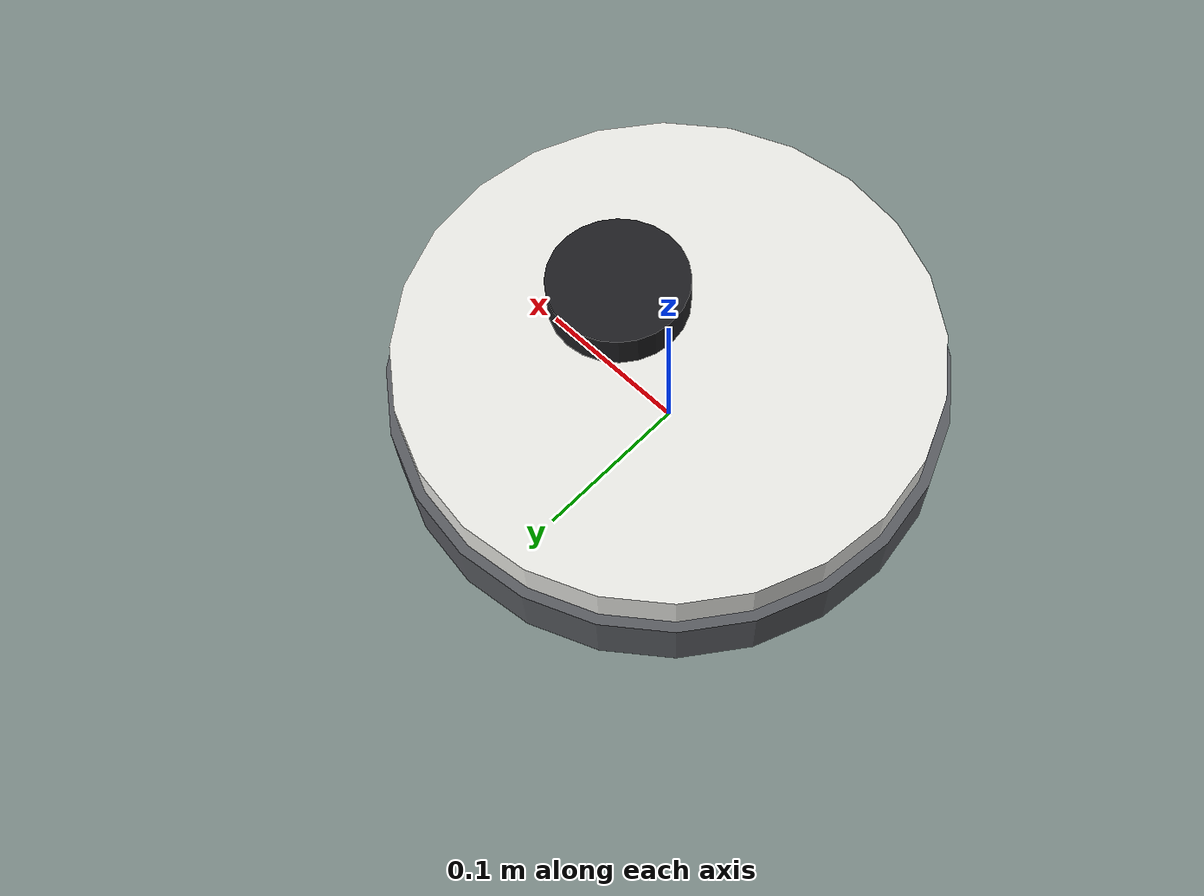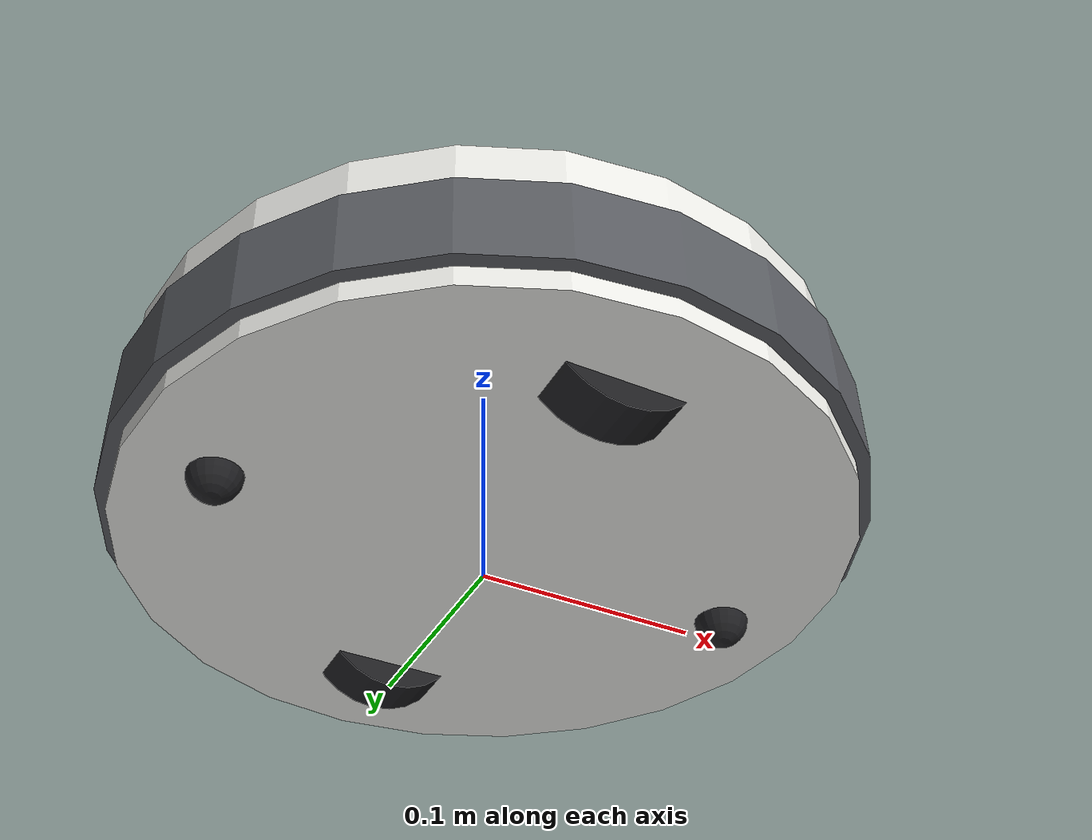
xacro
<?xml version="1.0"?>
<robot name="oomwoo" xmlns:xacro="http://ros.org/wiki/xacro">

  <xacro:arg name="is_ignition" default="true"/>
  <xacro:arg name="is_sim" default="true"/>

  <xacro:property name="body_radius" value="0.165"/>
  <xacro:property name="body_height" value="0.075"/>
  <xacro:property name="ground_clearance" value="0.012"/>
  <xacro:property name="wheel_radius" value="0.035"/>
  <xacro:property name="wheel_width" value="0.022"/>
  <xacro:property name="wheel_separation" value="0.22"/>
  <!-- base_link sits at the wheel axle, wheel_radius above the floor -->
  <xacro:property name="body_z" value="${ground_clearance + body_height / 2 - wheel_radius}"/>
  <xacro:property name="body_top" value="${ground_clearance + body_height - wheel_radius}"/>

  <xacro:include filename="$(find robot_lab_robots)/oomwoo/urdf/oomwoo_gazebo.xacro" />
  <xacro:include filename="$(find robot_lab_robots)/oomwoo/urdf/oomwoo_ros2_control.xacro" />

  <material name="oomwoo_shell"><color rgba="0.92 0.92 0.90 1"/></material>
  <material name="oomwoo_dark"><color rgba="0.12 0.12 0.13 1"/></material>
  <material name="oomwoo_bumper"><color rgba="0.35 0.36 0.38 1"/></material>
  <material name="oomwoo_accent"><color rgba="0.10 0.55 0.85 1"/></material>

  <link name="base_footprint"/>

  <link name="base_link">
    <inertial>
      <origin xyz="0 0 ${body_z}" rpy="0 0 0"/>
      <mass value="3.2"/>
      <inertia ixx="0.0233" ixy="0" ixz="0" iyy="0.0233" iyz="0" izz="0.0436"/>
    </inertial>
    <visual>
      <origin xyz="0 0 ${body_z}" rpy="0 0 0"/>
      <geometry><cylinder radius="${body_radius - 0.006}" length="${body_height}"/></geometry>
      <material name="oomwoo_shell"/>
    </visual>
    <collision>
      <origin xyz="0 0 ${body_z}" rpy="0 0 0"/>
      <geometry><cylinder radius="${body_radius - 0.006}" length="${body_height}"/></geometry>
    </collision>
  </link>

  <joint name="base_joint" type="fixed">
    <parent link="base_footprint"/>
    <child link="base_link"/>
    <origin xyz="0 0 ${wheel_radius}" rpy="0 0 0"/>
  </joint>

  <!-- Bumper ring: slightly wider than the shell so it touches first. -->
  <link name="bumper_link">
    <inertial>
      <origin xyz="0 0 0" rpy="0 0 0"/>
      <mass value="0.1"/>
      <inertia ixx="1e-4" ixy="0" ixz="0" iyy="1e-4" iyz="0" izz="2e-4"/>
    </inertial>
    <visual>
      <origin xyz="0 0 0" rpy="0 0 0"/>
      <geometry><cylinder radius="${body_radius}" length="0.04"/></geometry>
      <material name="oomwoo_bumper"/>
    </visual>
    <collision>
      <origin xyz="0 0 0" rpy="0 0 0"/>
      <geometry><cylinder radius="${body_radius}" length="0.04"/></geometry>
    </collision>
  </link>

  <joint name="bumper_joint" type="fixed">
    <parent link="base_link"/>
    <child link="bumper_link"/>
    <origin xyz="0 0 ${body_z - 0.008}" rpy="0 0 0"/>
  </joint>

  <xacro:macro name="drive_wheel" params="side y">
    <link name="wheel_${side}_link">
      <inertial>
        <origin xyz="0 0 0" rpy="0 0 0"/>
        <mass value="0.12"/>
        <inertia ixx="4.2e-5" ixy="0" ixz="0" iyy="7.4e-5" iyz="0" izz="4.2e-5"/>
      </inertial>
      <visual>
        <origin xyz="0 0 0" rpy="1.5708 0 0"/>
        <geometry><cylinder radius="${wheel_radius}" length="${wheel_width}"/></geometry>
        <material name="oomwoo_dark"/>
      </visual>
      <collision>
        <origin xyz="0 0 0" rpy="1.5708 0 0"/>
        <geometry><cylinder radius="${wheel_radius}" length="${wheel_width}"/></geometry>
      </collision>
    </link>
    <joint name="${side}_wheel_joint" type="continuous">
      <parent link="base_link"/>
      <child link="wheel_${side}_link"/>
      <origin xyz="0 ${y} 0" rpy="0 0 0"/>
      <axis xyz="0 1 0"/>
    </joint>
  </xacro:macro>
  <xacro:drive_wheel side="left" y="${wheel_separation / 2}"/>
  <xacro:drive_wheel side="right" y="${-wheel_separation / 2}"/>

  <xacro:macro name="caster" params="name x">
    <link name="${name}_caster_link">
      <inertial>
        <origin xyz="0 0 0" rpy="0 0 0"/>
        <mass value="0.02"/>
        <inertia ixx="2e-6" ixy="0" ixz="0" iyy="2e-6" iyz="0" izz="2e-6"/>
      </inertial>
      <visual>
        <origin xyz="0 0 0" rpy="0 0 0"/>
        <geometry><sphere radius="0.012"/></geometry>
        <material name="oomwoo_dark"/>
      </visual>
      <collision>
        <origin xyz="0 0 0" rpy="0 0 0"/>
        <geometry><sphere radius="0.012"/></geometry>
      </collision>
    </link>
    <joint name="${name}_caster_joint" type="fixed">
      <parent link="base_link"/>
      <child link="${name}_caster_link"/>
      <origin xyz="${x} 0 ${0.012 - wheel_radius}" rpy="0 0 0"/>
    </joint>
  </xacro:macro>
  <xacro:caster name="front" x="0.12"/>
  <xacro:caster name="rear" x="-0.12"/>

  <!-- Main brush (visual only) across the underside, behind the wheels' axis. -->
  <link name="main_brush_link">
    <visual>
      <origin xyz="0 0 0" rpy="1.5708 0 0"/>
      <geometry><cylinder radius="0.012" length="0.17"/></geometry>
      <material name="oomwoo_accent"/>
    </visual>
  </link>
  <joint name="main_brush_joint" type="fixed">
    <parent link="base_link"/>
    <child link="main_brush_link"/>
    <origin xyz="-0.04 0 ${ground_clearance + 0.012 - wheel_radius}" rpy="0 0 0"/>
  </joint>

  <!-- LiDAR turret on top. -->
  <link name="lidar_turret_link">
    <visual>
      <origin xyz="0 0 0" rpy="0 0 0"/>
      <geometry><cylinder radius="0.042" length="0.022"/></geometry>
      <material name="oomwoo_dark"/>
    </visual>
    <collision>
      <origin xyz="0 0 0" rpy="0 0 0"/>
      <geometry><cylinder radius="0.042" length="0.022"/></geometry>
    </collision>
  </link>
  <joint name="lidar_turret_joint" type="fixed">
    <parent link="base_link"/>
    <child link="lidar_turret_link"/>
    <origin xyz="0.04 0 ${body_top + 0.011}" rpy="0 0 0"/>
  </joint>

  <link name="laser_link"/>
  <joint name="laser_joint" type="fixed">
    <parent link="base_link"/>
    <child link="laser_link"/>
    <origin xyz="0.04 0 ${body_top + 0.016}" rpy="0 0 0"/>
  </joint>

  <link name="imu_link"/>
  <joint name="imu_joint" type="fixed">
    <parent link="base_link"/>
    <child link="imu_link"/>
    <origin xyz="0 0 0" rpy="0 0 0"/>
  </joint>

  <!-- Cliff sensors: downward range sensors behind the front edge. -->
  <xacro:macro name="cliff" params="side y">
    <link name="cliff_${side}_link"/>
    <joint name="cliff_${side}_joint" type="fixed">
      <parent link="base_link"/>
      <child link="cliff_${side}_link"/>
      <origin xyz="0.135 ${y} ${ground_clearance - 0.004 - wheel_radius}" rpy="0 1.5708 0"/>
    </joint>
  </xacro:macro>
  <xacro:cliff side="front_left" y="0.07"/>
  <xacro:cliff side="front_right" y="-0.07"/>

  <link name="front_camera_link"/>
  <joint name="front_camera_joint" type="fixed">
    <parent link="base_link"/>
    <child link="front_camera_link"/>
    <origin xyz="0.168 0 0.04" rpy="0 0.3 0"/>
  </joint>
  <link name="front_camera_optical_frame"/>
  <joint name="front_camera_optical_joint" type="fixed">
    <parent link="front_camera_link"/>
    <child link="front_camera_optical_frame"/>
    <origin xyz="0 0 0" rpy="-1.5708 0 -1.5708"/>
  </joint>

</robot>
